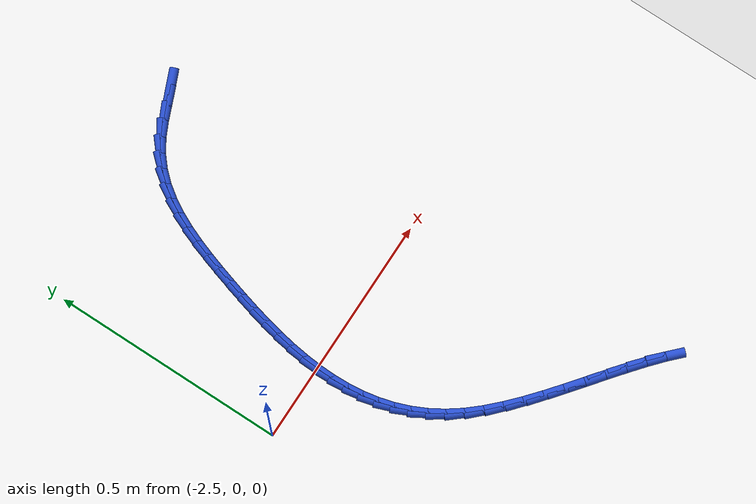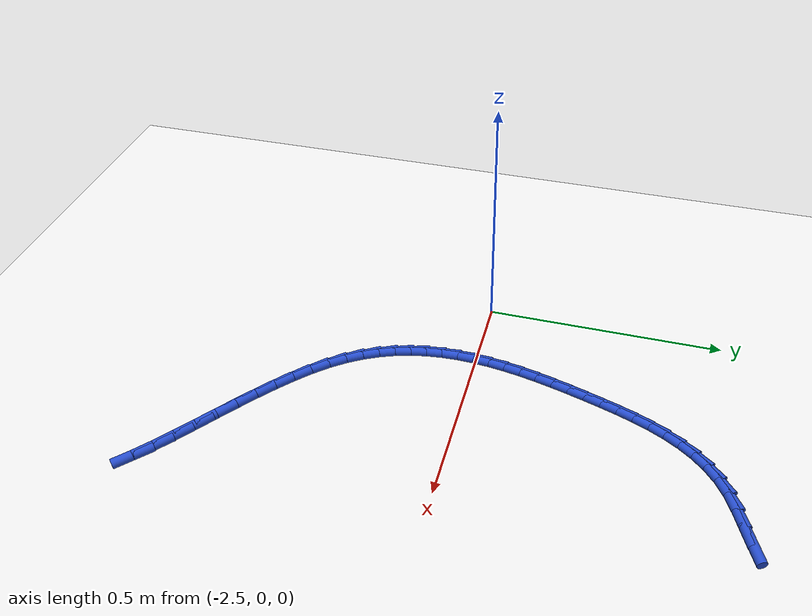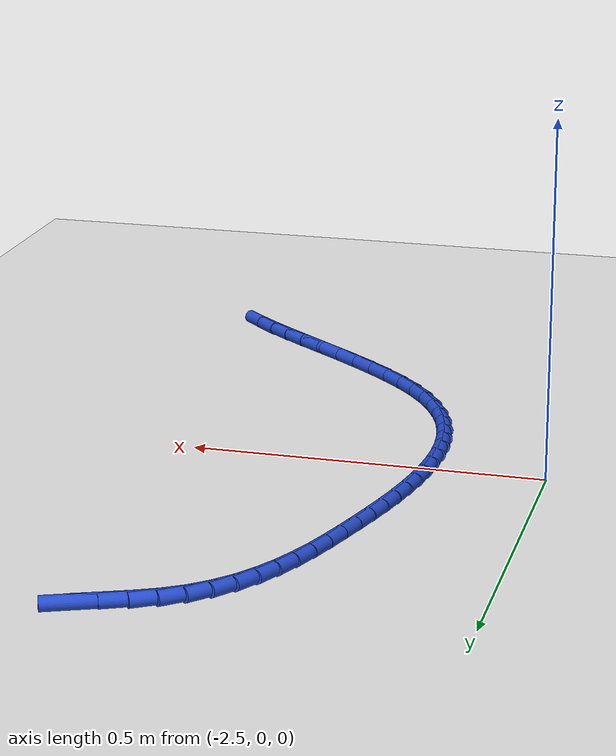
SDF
<sdf version="1.6">
 <world name="default">
  <model name="ground_plane">
   <static>1</static>
   <link name="link">
    <collision name="collision">
     <geometry><plane><normal>0 0 1</normal><size>100 100</size></plane></geometry>
     <surface><friction><ode><mu>100</mu><mu2>50</mu2></ode></friction></surface>
    </collision>
    <visual name="visual">
     <cast_shadows>0</cast_shadows>
     <geometry><plane><normal>0 0 1</normal><size>100 100</size></plane></geometry>
     <material>
      <script><uri>file://media/materials/scripts/gazebo.material</uri><name>Gazebo/WhiteGlow</name></script>
     </material>
    </visual>
   </link>
  </model>
  <model name="line">
   <link name="link_101">
    <pose>-2.0245707794899994 0.5618696231346464 0.01 0 1.57 0.401795920942145</pose>
    <collision name="collision">
     <geometry><cylinder><radius>0.01</radius><length>0.08</length></cylinder></geometry>
    </collision>
    <visual name="visual">
     <material>
      <script><name>Gazebo/Blue</name><uri>file://media/materials/scripts/gazebo.material</uri></script>
     </material>
     <geometry><cylinder><radius>0.01</radius><length>0.08</length></cylinder></geometry>
    </visual>
   </link>
   <link name="link_102">
    <pose>-2.056459760570651 0.5483196194586044 0.01 0 1.57 0.3897932902147504</pose>
    <collision name="collision">
     <geometry><cylinder><radius>0.01</radius><length>0.08</length></cylinder></geometry>
    </collision>
    <visual name="visual">
     <material>
      <script><name>Gazebo/Blue</name><uri>file://media/materials/scripts/gazebo.material</uri></script>
     </material>
     <geometry><cylinder><radius>0.01</radius><length>0.08</length></cylinder></geometry>
    </visual>
   </link>
   <link name="link_103">
    <pose>-2.089224132871147 0.534859579586197 0.01 0 1.57 0.4447781099359123</pose>
    <collision name="collision">
     <geometry><cylinder><radius>0.01</radius><length>0.08</length></cylinder></geometry>
    </collision>
    <visual name="visual">
     <material>
      <script><name>Gazebo/Blue</name><uri>file://media/materials/scripts/gazebo.material</uri></script>
     </material>
     <geometry><cylinder><radius>0.01</radius><length>0.08</length></cylinder></geometry>
    </visual>
   </link>
   <link name="link_104">
    <pose>-2.120756539980214 0.5198302620647114 0.01 0 1.57 0.5668479743131855</pose>
    <collision name="collision">
     <geometry><cylinder><radius>0.01</radius><length>0.08</length></cylinder></geometry>
    </collision>
    <visual name="visual">
     <material>
      <script><name>Gazebo/Blue</name><uri>file://media/materials/scripts/gazebo.material</uri></script>
     </material>
     <geometry><cylinder><radius>0.01</radius><length>0.08</length></cylinder></geometry>
    </visual>
   </link>
   <link name="link_105">
    <pose>-2.1491638275844784 0.5017481571574136 0.01 0 1.57 0.707541221534274</pose>
    <collision name="collision">
     <geometry><cylinder><radius>0.01</radius><length>0.08</length></cylinder></geometry>
    </collision>
    <visual name="visual">
     <material>
      <script><name>Gazebo/Blue</name><uri>file://media/materials/scripts/gazebo.material</uri></script>
     </material>
     <geometry><cylinder><radius>0.01</radius><length>0.08</length></cylinder></geometry>
    </visual>
   </link>
   <link name="link_106">
    <pose>-2.174113213139234 0.48040988642020116 0.01 0 1.57 0.837044188429696</pose>
    <collision name="collision">
     <geometry><cylinder><radius>0.01</radius><length>0.08</length></cylinder></geometry>
    </collision>
    <visual name="visual">
     <material>
      <script><name>Gazebo/Blue</name><uri>file://media/materials/scripts/gazebo.material</uri></script>
     </material>
     <geometry><cylinder><radius>0.01</radius><length>0.08</length></cylinder></geometry>
    </visual>
   </link>
   <link name="link_107">
    <pose>-2.1959624865038703 0.4561786180243808 0.01 0 1.57 0.9506271322666957</pose>
    <collision name="collision">
     <geometry><cylinder><radius>0.01</radius><length>0.08</length></cylinder></geometry>
    </collision>
    <visual name="visual">
     <material>
      <script><name>Gazebo/Blue</name><uri>file://media/materials/scripts/gazebo.material</uri></script>
     </material>
     <geometry><cylinder><radius>0.01</radius><length>0.08</length></cylinder></geometry>
    </visual>
   </link>
   <link name="link_108">
    <pose>-2.2150725109391587 0.42942004156426894 0.01 0 1.57 1.0463018477101582</pose>
    <collision name="collision">
     <geometry><cylinder><radius>0.01</radius><length>0.08</length></cylinder></geometry>
    </collision>
    <visual name="visual">
     <material>
      <script><name>Gazebo/Blue</name><uri>file://media/materials/scripts/gazebo.material</uri></script>
     </material>
     <geometry><cylinder><radius>0.01</radius><length>0.08</length></cylinder></geometry>
    </visual>
   </link>
   <link name="link_109">
    <pose>-2.23180414970587 0.4004998466341833 0.01 0 1.57 1.1240604682225763</pose>
    <collision name="collision">
     <geometry><cylinder><radius>0.01</radius><length>0.08</length></cylinder></geometry>
    </collision>
    <visual name="visual">
     <material>
      <script><name>Gazebo/Blue</name><uri>file://media/materials/scripts/gazebo.material</uri></script>
     </material>
     <geometry><cylinder><radius>0.01</radius><length>0.08</length></cylinder></geometry>
    </visual>
   </link>
   <link name="link_110">
    <pose>-2.246518266064776 0.3697837228284405 0.01 0 1.57 1.184967135131928</pose>
    <collision name="collision">
     <geometry><cylinder><radius>0.01</radius><length>0.08</length></cylinder></geometry>
    </collision>
    <visual name="visual">
     <material>
      <script><name>Gazebo/Blue</name><uri>file://media/materials/scripts/gazebo.material</uri></script>
     </material>
     <geometry><cylinder><radius>0.01</radius><length>0.08</length></cylinder></geometry>
    </visual>
   </link>
   <link name="link_111">
    <pose>-2.2595757232766465 0.33763735974135733 0.01 0 1.57 1.2304287540925278</pose>
    <collision name="collision">
     <geometry><cylinder><radius>0.01</radius><length>0.08</length></cylinder></geometry>
    </collision>
    <visual name="visual">
     <material>
      <script><name>Gazebo/Blue</name><uri>file://media/materials/scripts/gazebo.material</uri></script>
     </material>
     <geometry><cylinder><radius>0.01</radius><length>0.08</length></cylinder></geometry>
    </visual>
   </link>
   <link name="link_112">
    <pose>-2.2713373846022535 0.30442644696725024 0.01 0 1.57 1.2617461997444888</pose>
    <collision name="collision">
     <geometry><cylinder><radius>0.01</radius><length>0.08</length></cylinder></geometry>
    </collision>
    <visual name="visual">
     <material>
      <script><name>Gazebo/Blue</name><uri>file://media/materials/scripts/gazebo.material</uri></script>
     </material>
     <geometry><cylinder><radius>0.01</radius><length>0.08</length></cylinder></geometry>
    </visual>
   </link>
   <link name="link_113">
    <pose>-2.2821641133023682 0.2705166741004371 0.01 0 1.57 1.2800608520874173</pose>
    <collision name="collision">
     <geometry><cylinder><radius>0.01</radius><length>0.08</length></cylinder></geometry>
    </collision>
    <visual name="visual">
     <material>
      <script><name>Gazebo/Blue</name><uri>file://media/materials/scripts/gazebo.material</uri></script>
     </material>
     <geometry><cylinder><radius>0.01</radius><length>0.08</length></cylinder></geometry>
    </visual>
   </link>
   <link name="link_114">
    <pose>-2.292411037758299 0.23627052651152403 0.01 0 1.57 1.2931928397496288</pose>
    <collision name="collision">
     <geometry><cylinder><radius>0.01</radius><length>0.08</length></cylinder></geometry>
    </collision>
    <visual name="visual">
     <material>
      <script><name>Gazebo/Blue</name><uri>file://media/materials/scripts/gazebo.material</uri></script>
     </material>
     <geometry><cylinder><radius>0.01</radius><length>0.08</length></cylinder></geometry>
    </visual>
   </link>
   <link name="link_115">
    <pose>-2.3021996301497007 0.20191993988018736 0.01 0 1.57 1.3110211304855415</pose>
    <collision name="collision">
     <geometry><cylinder><radius>0.01</radius><length>0.08</length></cylinder></geometry>
    </collision>
    <visual name="visual">
     <material>
      <script><name>Gazebo/Blue</name><uri>file://media/materials/scripts/gazebo.material</uri></script>
     </material>
     <geometry><cylinder><radius>0.01</radius><length>0.08</length></cylinder></geometry>
    </visual>
   </link>
   <link name="link_116">
    <pose>-2.3113414878408465 0.16752371490792475 0.01 0 1.57 1.3344113902305903</pose>
    <collision name="collision">
     <geometry><cylinder><radius>0.01</radius><length>0.08</length></cylinder></geometry>
    </collision>
    <visual name="visual">
     <material>
      <script><name>Gazebo/Blue</name><uri>file://media/materials/scripts/gazebo.material</uri></script>
     </material>
     <geometry><cylinder><radius>0.01</radius><length>0.08</length></cylinder></geometry>
    </visual>
   </link>
   <link name="link_117">
    <pose>-2.319626847710331 0.13312871764701747 0.01 0 1.57 1.3636298803690108</pose>
    <collision name="collision">
     <geometry><cylinder><radius>0.01</radius><length>0.08</length></cylinder></geometry>
    </collision>
    <visual name="visual">
     <material>
      <script><name>Gazebo/Blue</name><uri>file://media/materials/scripts/gazebo.material</uri></script>
     </material>
     <geometry><cylinder><radius>0.01</radius><length>0.08</length></cylinder></geometry>
    </visual>
   </link>
   <link name="link_118">
    <pose>-2.3268459466367486 0.09878181414974707 0.01 0 1.57 1.3989961798113444</pose>
    <collision name="collision">
     <geometry><cylinder><radius>0.01</radius><length>0.08</length></cylinder></geometry>
    </collision>
    <visual name="visual">
     <material>
      <script><name>Gazebo/Blue</name><uri>file://media/materials/scripts/gazebo.material</uri></script>
     </material>
     <geometry><cylinder><radius>0.01</radius><length>0.08</length></cylinder></geometry>
    </visual>
   </link>
   <link name="link_119">
    <pose>-2.3327890214986935 0.06452987046839485 0.01 0 1.57 1.4408590960264585</pose>
    <collision name="collision">
     <geometry><cylinder><radius>0.01</radius><length>0.08</length></cylinder></geometry>
    </collision>
    <visual name="visual">
     <material>
      <script><name>Gazebo/Blue</name><uri>file://media/materials/scripts/gazebo.material</uri></script>
     </material>
     <geometry><cylinder><radius>0.01</radius><length>0.08</length></cylinder></geometry>
    </visual>
   </link>
   <link name="link_120">
    <pose>-2.3372463091747595 0.030419752655243264 0.01 0 1.57 1.4895597816406987</pose>
    <collision name="collision">
     <geometry><cylinder><radius>0.01</radius><length>0.08</length></cylinder></geometry>
    </collision>
    <visual name="visual">
     <material>
      <script><name>Gazebo/Blue</name><uri>file://media/materials/scripts/gazebo.material</uri></script>
     </material>
     <geometry><cylinder><radius>0.01</radius><length>0.08</length></cylinder></geometry>
    </visual>
   </link>
   <link name="link_121">
    <pose>-2.340008046543539 -0.0035016732374264694 0.01 0 1.57 1.545377967647548</pose>
    <collision name="collision">
     <geometry><cylinder><radius>0.01</radius><length>0.08</length></cylinder></geometry>
    </collision>
    <visual name="visual">
     <material>
      <script><name>Gazebo/Blue</name><uri>file://media/materials/scripts/gazebo.material</uri></script>
     </material>
     <geometry><cylinder><radius>0.01</radius><length>0.08</length></cylinder></geometry>
    </visual>
   </link>
   <link name="link_122">
    <pose>-2.340864470483628 -0.03718754115733272 0.01 0 1.57 -1.5331338199078843</pose>
    <collision name="collision">
     <geometry><cylinder><radius>0.01</radius><length>0.08</length></cylinder></geometry>
    </collision>
    <visual name="visual">
     <material>
      <script><name>Gazebo/Blue</name><uri>file://media/materials/scripts/gazebo.material</uri></script>
     </material>
     <geometry><cylinder><radius>0.01</radius><length>0.08</length></cylinder></geometry>
    </visual>
   </link>
   <link name="link_123">
    <pose>-2.3396058178736197 -0.07059098505219386 0.01 0 1.57 -1.4628701225318697</pose>
    <collision name="collision">
     <geometry><cylinder><radius>0.01</radius><length>0.08</length></cylinder></geometry>
    </collision>
    <visual name="visual">
     <material>
      <script><name>Gazebo/Blue</name><uri>file://media/materials/scripts/gazebo.material</uri></script>
     </material>
     <geometry><cylinder><radius>0.01</radius><length>0.08</length></cylinder></geometry>
    </visual>
   </link>
   <link name="link_124">
    <pose>-2.336022325592108 -0.10366513886972828 0.01 0 1.57 -1.385825963987899</pose>
    <collision name="collision">
     <geometry><cylinder><radius>0.01</radius><length>0.08</length></cylinder></geometry>
    </collision>
    <visual name="visual">
     <material>
      <script><name>Gazebo/Blue</name><uri>file://media/materials/scripts/gazebo.material</uri></script>
     </material>
     <geometry><cylinder><radius>0.01</radius><length>0.08</length></cylinder></geometry>
    </visual>
   </link>
   <link name="link_125">
    <pose>-2.329904230517687 -0.13636313655765514 0.01 0 1.57 -1.3028091553299266</pose>
    <collision name="collision">
     <geometry><cylinder><radius>0.01</radius><length>0.08</length></cylinder></geometry>
    </collision>
    <visual name="visual">
     <material>
      <script><name>Gazebo/Blue</name><uri>file://media/materials/scripts/gazebo.material</uri></script>
     </material>
     <geometry><cylinder><radius>0.01</radius><length>0.08</length></cylinder></geometry>
    </visual>
   </link>
   <link name="link_126">
    <pose>-2.3210417695289505 -0.1686381120636912 0.01 0 1.57 -1.215070043939716</pose>
    <collision name="collision">
     <geometry><cylinder><radius>0.01</radius><length>0.08</length></cylinder></geometry>
    </collision>
    <visual name="visual">
     <material>
      <script><name>Gazebo/Blue</name><uri>file://media/materials/scripts/gazebo.material</uri></script>
     </material>
     <geometry><cylinder><radius>0.01</radius><length>0.08</length></cylinder></geometry>
    </visual>
   </link>
   <link name="link_127">
    <pose>-2.3092251795044927 -0.20044319933555552 0.01 0 1.57 -1.1242617637894703</pose>
    <collision name="collision">
     <geometry><cylinder><radius>0.01</radius><length>0.08</length></cylinder></geometry>
    </collision>
    <visual name="visual">
     <material>
      <script><name>Gazebo/Blue</name><uri>file://media/materials/scripts/gazebo.material</uri></script>
     </material>
     <geometry><cylinder><radius>0.01</radius><length>0.08</length></cylinder></geometry>
    </visual>
   </link>
   <link name="link_128">
    <pose>-2.294244697322907 -0.23173153232096652 0.01 0 1.57 -1.0323101147369305</pose>
    <collision name="collision">
     <geometry><cylinder><radius>0.01</radius><length>0.08</length></cylinder></geometry>
    </collision>
    <visual name="visual">
     <material>
      <script><name>Gazebo/Blue</name><uri>file://media/materials/scripts/gazebo.material</uri></script>
     </material>
     <geometry><cylinder><radius>0.01</radius><length>0.08</length></cylinder></geometry>
    </visual>
   </link>
   <link name="link_129">
    <pose>-2.275890559862789 -0.26245624496764275 0.01 0 1.57 -0.9412134426458139</pose>
    <collision name="collision">
     <geometry><cylinder><radius>0.01</radius><length>0.08</length></cylinder></geometry>
    </collision>
    <visual name="visual">
     <material>
      <script><name>Gazebo/Blue</name><uri>file://media/materials/scripts/gazebo.material</uri></script>
     </material>
     <geometry><cylinder><radius>0.01</radius><length>0.08</length></cylinder></geometry>
    </visual>
   </link>
   <link name="link_130">
    <pose>-2.253953062264663 -0.29257047746173015 0.01 0 1.57 -0.8566047541572861</pose>
    <collision name="collision">
     <geometry><cylinder><radius>0.01</radius><length>0.08</length></cylinder></geometry>
    </collision>
    <visual name="visual">
     <material>
      <script><name>Gazebo/Blue</name><uri>file://media/materials/scripts/gazebo.material</uri></script>
     </material>
     <geometry><cylinder><radius>0.01</radius><length>0.08</length></cylinder></geometry>
    </visual>
   </link>
   <link name="link_131">
    <pose>-2.228401900100677 -0.3220465793872773 0.01 0 1.57 -0.7897927759237378</pose>
    <collision name="collision">
     <geometry><cylinder><radius>0.01</radius><length>0.08</length></cylinder></geometry>
    </collision>
    <visual name="visual">
     <material>
      <script><name>Gazebo/Blue</name><uri>file://media/materials/scripts/gazebo.material</uri></script>
     </material>
     <geometry><cylinder><radius>0.01</radius><length>0.08</length></cylinder></geometry>
    </visual>
   </link>
   <link name="link_132">
    <pose>-2.199782577729788 -0.3509185553645094 0.01 0 1.57 -0.739719693263993</pose>
    <collision name="collision">
     <geometry><cylinder><radius>0.01</radius><length>0.08</length></cylinder></geometry>
    </collision>
    <visual name="visual">
     <material>
      <script><name>Gazebo/Blue</name><uri>file://media/materials/scripts/gazebo.material</uri></script>
     </material>
     <geometry><cylinder><radius>0.01</radius><length>0.08</length></cylinder></geometry>
    </visual>
   </link>
   <link name="link_133">
    <pose>-2.1687558904960573 -0.3792327548580144 0.01 0 1.57 -0.7035279237276976</pose>
    <collision name="collision">
     <geometry><cylinder><radius>0.01</radius><length>0.08</length></cylinder></geometry>
    </collision>
    <visual name="visual">
     <material>
      <script><name>Gazebo/Blue</name><uri>file://media/materials/scripts/gazebo.material</uri></script>
     </material>
     <geometry><cylinder><radius>0.01</radius><length>0.08</length></cylinder></geometry>
    </visual>
   </link>
   <link name="link_134">
    <pose>-2.1359826337435472 -0.4070355273323827 0.01 0 1.57 -0.6792353284810194</pose>
    <collision name="collision">
     <geometry><cylinder><radius>0.01</radius><length>0.08</length></cylinder></geometry>
    </collision>
    <visual name="visual">
     <material>
      <script><name>Gazebo/Blue</name><uri>file://media/materials/scripts/gazebo.material</uri></script>
     </material>
     <geometry><cylinder><radius>0.01</radius><length>0.08</length></cylinder></geometry>
    </visual>
   </link>
   <link name="link_135">
    <pose>-2.102123602816318 -0.43437322225220376 0.01 0 1.57 -0.6656360628104254</pose>
    <collision name="collision">
     <geometry><cylinder><radius>0.01</radius><length>0.08</length></cylinder></geometry>
    </collision>
    <visual name="visual">
     <material>
      <script><name>Gazebo/Blue</name><uri>file://media/materials/scripts/gazebo.material</uri></script>
     </material>
     <geometry><cylinder><radius>0.01</radius><length>0.08</length></cylinder></geometry>
    </visual>
   </link>
   <link name="link_136">
    <pose>-2.067839593058432 -0.4612921890820675 0.01 0 1.57 -0.6622253510866597</pose>
    <collision name="collision">
     <geometry><cylinder><radius>0.01</radius><length>0.08</length></cylinder></geometry>
    </collision>
    <visual name="visual">
     <material>
      <script><name>Gazebo/Blue</name><uri>file://media/materials/scripts/gazebo.material</uri></script>
     </material>
     <geometry><cylinder><radius>0.01</radius><length>0.08</length></cylinder></geometry>
    </visual>
   </link>
   <link name="link_137">
    <pose>-2.0337913998139503 -0.4878387772865633 0.01 0 1.57 -0.6691855399665035</pose>
    <collision name="collision">
     <geometry><cylinder><radius>0.01</radius><length>0.08</length></cylinder></geometry>
    </collision>
    <visual name="visual">
     <material>
      <script><name>Gazebo/Blue</name><uri>file://media/materials/scripts/gazebo.material</uri></script>
     </material>
     <geometry><cylinder><radius>0.01</radius><length>0.08</length></cylinder></geometry>
    </visual>
   </link>
   <link name="link_138">
    <pose>-2.000639818426934 -0.5140593363302808 0.01 0 1.57 -0.6874542915491458</pose>
    <collision name="collision">
     <geometry><cylinder><radius>0.01</radius><length>0.08</length></cylinder></geometry>
    </collision>
    <visual name="visual">
     <material>
      <script><name>Gazebo/Blue</name><uri>file://media/materials/scripts/gazebo.material</uri></script>
     </material>
     <geometry><cylinder><radius>0.01</radius><length>0.08</length></cylinder></geometry>
    </visual>
   </link>
   <link name="link_139">
    <pose>-1.9690456442414446 -0.5400002156778094 0.01 0 1.57 -0.718898901215946</pose>
    <collision name="collision">
     <geometry><cylinder><radius>0.01</radius><length>0.08</length></cylinder></geometry>
    </collision>
    <visual name="visual">
     <material>
      <script><name>Gazebo/Blue</name><uri>file://media/materials/scripts/gazebo.material</uri></script>
     </material>
     <geometry><cylinder><radius>0.01</radius><length>0.08</length></cylinder></geometry>
    </visual>
   </link>
   <link name="link_140">
    <pose>-1.939669672601543 -0.5657077647937399 0.01 0 1.57 -0.7666296727894312</pose>
    <collision name="collision">
     <geometry><cylinder><radius>0.01</radius><length>0.08</length></cylinder></geometry>
    </collision>
    <visual name="visual">
     <material>
      <script><name>Gazebo/Blue</name><uri>file://media/materials/scripts/gazebo.material</uri></script>
     </material>
     <geometry><cylinder><radius>0.01</radius><length>0.08</length></cylinder></geometry>
    </visual>
   </link>
  </model>
 </world>
</sdf>
